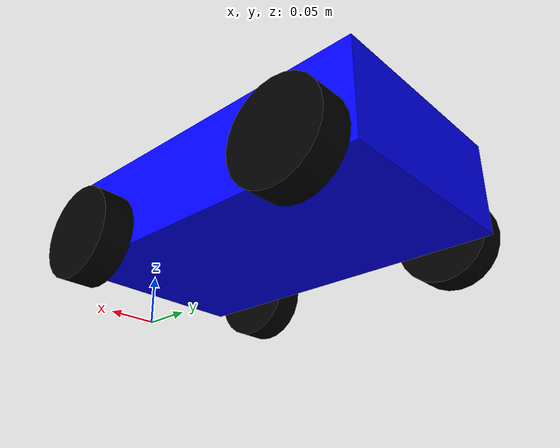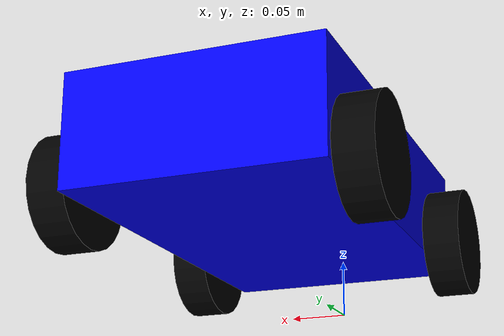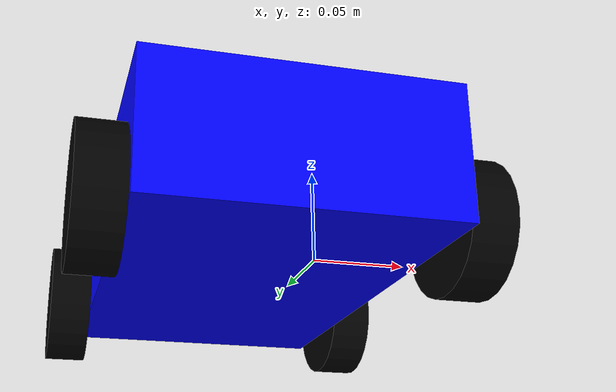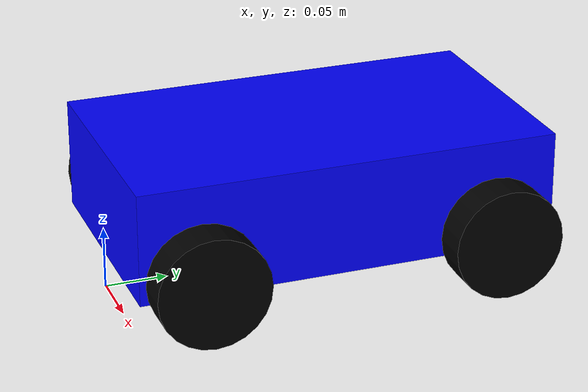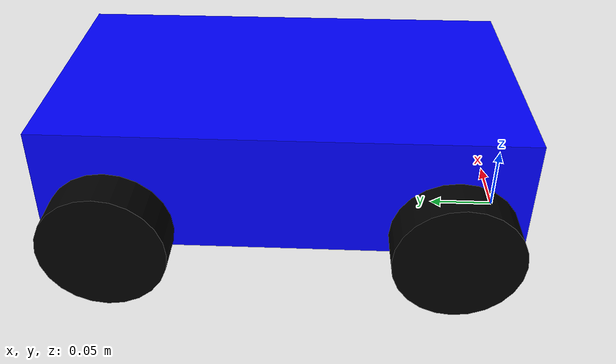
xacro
<?xml version="1.0"?>
<robot xmlns:xacro="http://www.ros.org/wiki/xacro">
    <xacro:include filename="Moment_of_inertia.xacro"/>

    <material name="blue">
        <color rgba="0 0 1 1"/>
    </material>

    <material name="black">
        <color rgba="0 0 0 1"/>
    </material>
    <link name="base_footprint">
    </link>

    <joint name="base_link" type="fixed">
        <parent link="base_footprint"/>
        <child link="base_link"/>
        <origin xyz="0 0.17 0.03" rpy="0 0 0"/>
    </joint>

    <link name="base_link">
    </link>

    <!-- chassis link -->

    <link name="chassis">
        <visual>
            <geometry>
                <box size="0.2 0.34 0.09"/>
            </geometry>
            <origin xyz="0 0 0" rpy="0 0 0"/>
            <material name="blue"/>
        </visual>
        <collision>
            <geometry>
                <box size="0.2 0.34 0.09"/>
            </geometry>
            <origin xyz="0 0 0" rpy="0 0 0"/>
            <material name="blue"/>
        </collision>
        <xacro:box_inertia mass="1.0" x="0.2" y="0.34" z="0.09" o_xyz="0 0 0" o_rpy="0 0 0"/>
    </link>

    <!--joint base,chssis-->

    <joint name="chssis_joint" type="fixed">
        <parent link="base_link"/>
        <child link="chassis"/>
        <origin xyz="0 0 0.045" rpy="0 0 0"/>
    </joint>

    <!--wheel links-->
    <link name="Front_leftwheel">
        <visual>
            <geometry>
                <cylinder length="0.03" radius="0.045"/>
            </geometry>
            <origin xyz="0 0 0" rpy="0 0 0"/>
            <material name="black"/>
        </visual>
        <collision>
            <geometry>
                <cylinder length="0.03" radius="0.045"/>
            </geometry>
            <origin xyz="0 0 0" rpy="0 0 0"/>
            <material name="black"/>
        </collision>
        <xacro:Cylinder_inertia mass="1.0" R="0.045" H="0.03" o_xyz="0 0 0" o_rpy="0 0 0"/>
    </link>

    <link name="Front_rightwheel">
        <visual>
            <geometry>
                <cylinder length="0.03" radius="0.045"/>
            </geometry>
            <origin xyz="0 0 0" rpy="0 0 0"/>
            <material name="black"/>
        </visual>
        <collision>
            <geometry>
                <cylinder length="0.03" radius="0.045"/>
            </geometry>
            <origin xyz="0 0 0" rpy="0 0 0"/>
            <material name="black"/>
        </collision>
        <xacro:Cylinder_inertia mass="1.0" R="0.045" H="0.03" o_xyz="0 0 0" o_rpy="0 0 0"/>
    </link>

    <link name="rear_leftwheel">
        <visual>
            <geometry>
                <cylinder length="0.03" radius="0.045"/>
            </geometry>
            <origin xyz="0 0 0" rpy="0 0 0"/>
            <material name="black"/>
        </visual>
        <collision>
            <geometry>
                <cylinder length="0.03" radius="0.045"/>
            </geometry>
            <origin xyz="0 0 0" rpy="0 0 0"/>
            <material name="black"/>
        </collision>
        <xacro:Cylinder_inertia mass="1.0" R="0.045" H="0.03" o_xyz="0 0 0" o_rpy="0 0 0"/>
    </link>

    <link name="rear_rightwheel">
        <visual>
            <geometry>
                <cylinder length="0.03" radius="0.045"/>
            </geometry>
            <origin xyz="0 0 0" rpy="0 0 0"/>
            <material name="black"/>
        </visual>
        <collision>
            <geometry>
                <cylinder length="0.03" radius="0.045"/>
            </geometry>
            <origin xyz="0 0 0" rpy="0 0 0"/>
            <material name="black"/>
        </collision>
        <xacro:Cylinder_inertia mass="1.0" R="0.045" H="0.03" o_xyz="0 0 0" o_rpy="0 0 0"/>
    </link>

    <!--joint chassis,wheels-->
    <joint name="front_leftwheel_joint" type="continuous">
        <parent link="chassis"/>
        <child link="Front_leftwheel"/>
        <origin xyz="-0.115 0.12 -0.03" rpy="0 -${pi/2} 0"/>
        <axis xyz="0 0 -1"/>
    </joint>

    <joint name="front_rightwheel_joint" type="continuous">
        <parent link="chassis"/>
        <child link="Front_rightwheel"/>
        <origin xyz="0.115 0.12 -0.03" rpy="0 ${pi/2} 0"/>
        <axis xyz="0 0 1"/>
    </joint>

    <joint name="rear_leftwheel_joint" type="continuous">
        <parent link="chassis"/>
        <child link="rear_leftwheel"/>
        <origin xyz="-0.115 -0.12 -0.03" rpy="0 -${pi/2} 0"/>
        <axis xyz="0 0 -1"/>
    </joint>

    <joint name="rear_rightwheel_joint" type="continuous">
        <parent link="chassis"/>
        <child link="rear_rightwheel"/>
        <origin xyz="0.115 -0.12 -0.03" rpy="0 ${pi/2} 0"/>
        <axis xyz="0 0 1"/>
    </joint>
</robot>

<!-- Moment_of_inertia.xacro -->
<robot xmlns:xacro="http://www.ros.org/wiki/xacro">
    <!--转动惯量-->
    <xacro:macro name="box_inertia" params="mass x y z o_xyz o_rpy">
        <inertial>
            <origin xyz="${o_xyz}" rpy="${o_rpy}"/>
            <mass value="${mass}"/>
            <inertia ixx="${(mass/12)*(y*y+z*z)}" ixy="0" ixz="0" iyy="${(mass/12)*(x*x+z*z)}" iyz="0" izz="${(mass/12)*(x*x+y*y)}"/>
        </inertial>
    </xacro:macro>

    <xacro:macro name="Cylinder_inertia" params="mass R H o_xyz o_rpy">
        <inertial>
            <origin xyz="${o_xyz}" rpy="${o_rpy}"/>
            <mass value="${mass}"/>
            <inertia ixx="${(mass/12)*(3*R*R+H*H)}" ixy="0" ixz="0" iyy="${(mass/12)*(3*R*R+H*H)}" iyz="0" izz="${(mass/2)*R*R}"/>
        </inertial>

    </xacro:macro>
</robot>
